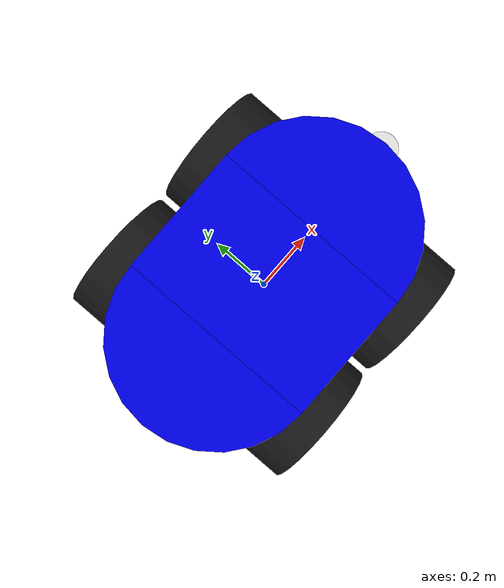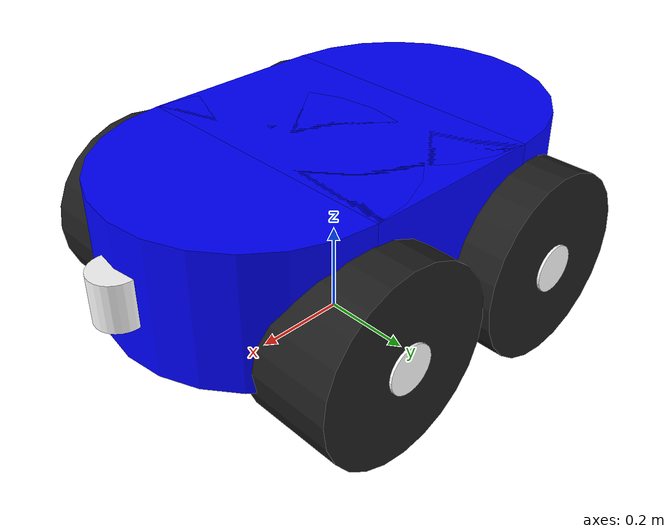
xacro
<?xml version="1.0"?>
<robot xmlns:sensor="http://playerstage.sourceforge.net/gazebo/xmlschema/#sensor"
       xmlns:controller="http://playerstage.sourceforge.net/gazebo/xmlschema/#controller"
       xmlns:interface="http://playerstage.sourceforge.net/gazebo/xmlschema/#interface"
       xmlns:xacro="http://ros.org/wiki/xacro"
       name="SeekurJr">

  <link name="base_link">
		<visual>
		  <origin xyz="0 0 0.3" rpy="0 0 0"/>
		  <geometry name="skj_geom_1">
     	  <box size="0.400 0.620 0.286" />
		  </geometry>
		  <material name="BodyBlue">
			  <color rgba="0.0 0.0 1.0 1.0"/>
		  </material>
	  </visual>
    <visual>
		  <origin xyz="0.2 0 0.3" rpy="0 0 0"/>
      <geometry name="skj_geom_2">
          <cylinder radius="0.31" length="0.286"/>
      </geometry>
		  <material name="BodyBlue">
			  <color rgba="0.0 0.0 1.0 1.0"/>
		  </material>
	  </visual>
    <visual>
		  <origin xyz="-0.2 0 0.3" rpy="0 0 0"/>
      <geometry name="skj_geom_2">
          <cylinder radius="0.31" length="0.286"/>
      </geometry>
		  <material name="BodyBlue">
			  <color rgba="0.0 0.0 1.0 1.0"/>
		  </material>
	  </visual>
	</link>

  <link name="base_laser">
    <visual>
      <geometry name="skj_laser">
          <cylinder radius="0.05" length="0.1"/>
      </geometry>
		  <material name="LaserWhite">
			  <color rgba="1.0 1.0 1.0 1.0"/>
		  </material>
	  </visual>
	</link>

  <joint name="base_link_to_laser" type="continuous">
    <origin xyz="0.51 0 0.3" rpy="0 0 0"/>
    <parent link="base_link"/>
    <child link="base_laser"/>
  </joint>

  <xacro:macro name="skj_wheel" params="end side endreflect sidereflect">

    <link name="skj_${end}_${side}_wheel">
      <visual>
        <origin xyz="0 0 0.1" rpy="-1.570795 0 0"/>
        <geometry name="skj_wheel_geom">
          <cylinder radius="0.2" length="0.2"/>
        </geometry>
        <material name="WheelBlack">
          <color rgba="0.117 0.117 0.117 1"/>
        </material>
      </visual>
      <visual>
        <origin xyz="0 0 0.1" rpy="-1.570795 0 0"/>
        <geometry name="skj_wheel_geom">
          <cylinder radius="0.05" length="0.21"/>
        </geometry>
        <material name="WheelWhite">
          <color rgba="1 1 1 1"/>
        </material>
      </visual>
    </link>

    <joint name="skj_${end}_${side}_wheel_joint" type="continuous">
      <axis xyz="0 1 0"/>
      <anchor xyz="0 0 0"/>
      <limit effort="100" velocity="100" />
      <joint_properties damping="0.7"/>
      <origin xyz="${endreflect} ${sidereflect} 0.1" rpy="0 0 0"/>
      <parent link="base_link"/>
      <child link="skj_${end}_${side}_wheel"/>
    </joint>

  </xacro:macro>

  <xacro:skj_wheel end="front" side="left" endreflect="0.21" sidereflect="0.3" />
  <xacro:skj_wheel end="front" side="right" endreflect="0.21" sidereflect="-0.3" />
  <xacro:skj_wheel end="back" side="left" endreflect="-0.21" sidereflect="0.3" />
  <xacro:skj_wheel end="back" side="right" endreflect="-0.21" sidereflect="-0.3" />

</robot>
